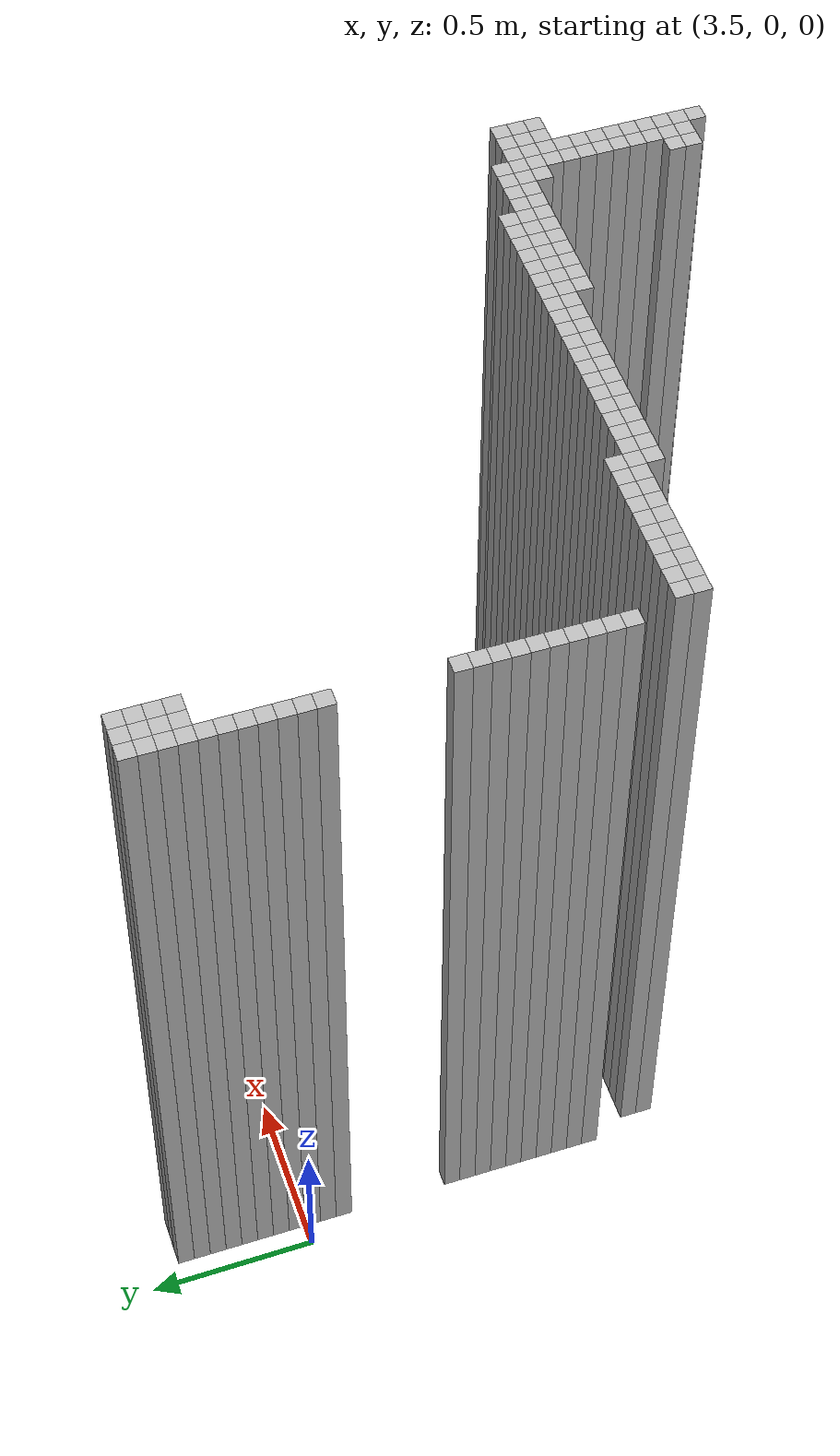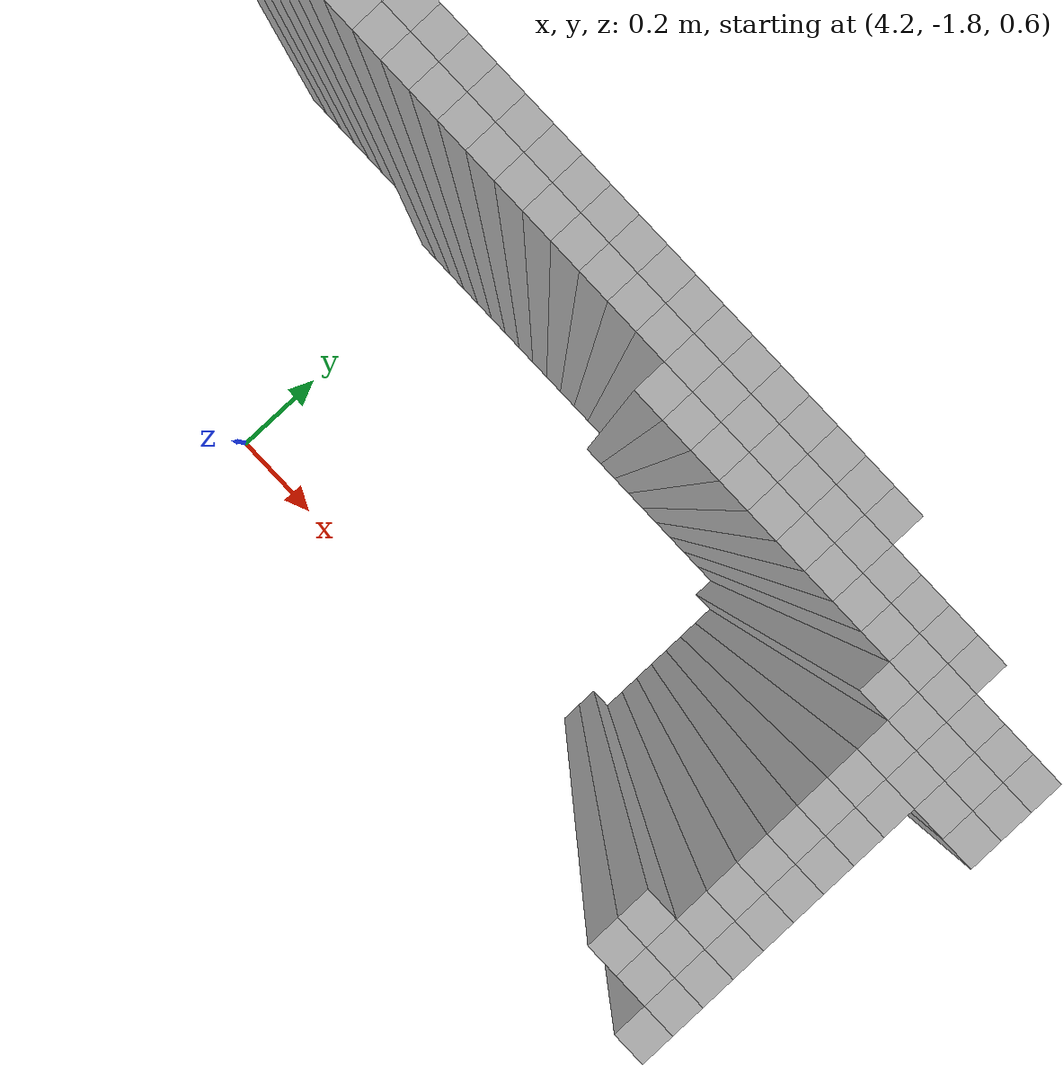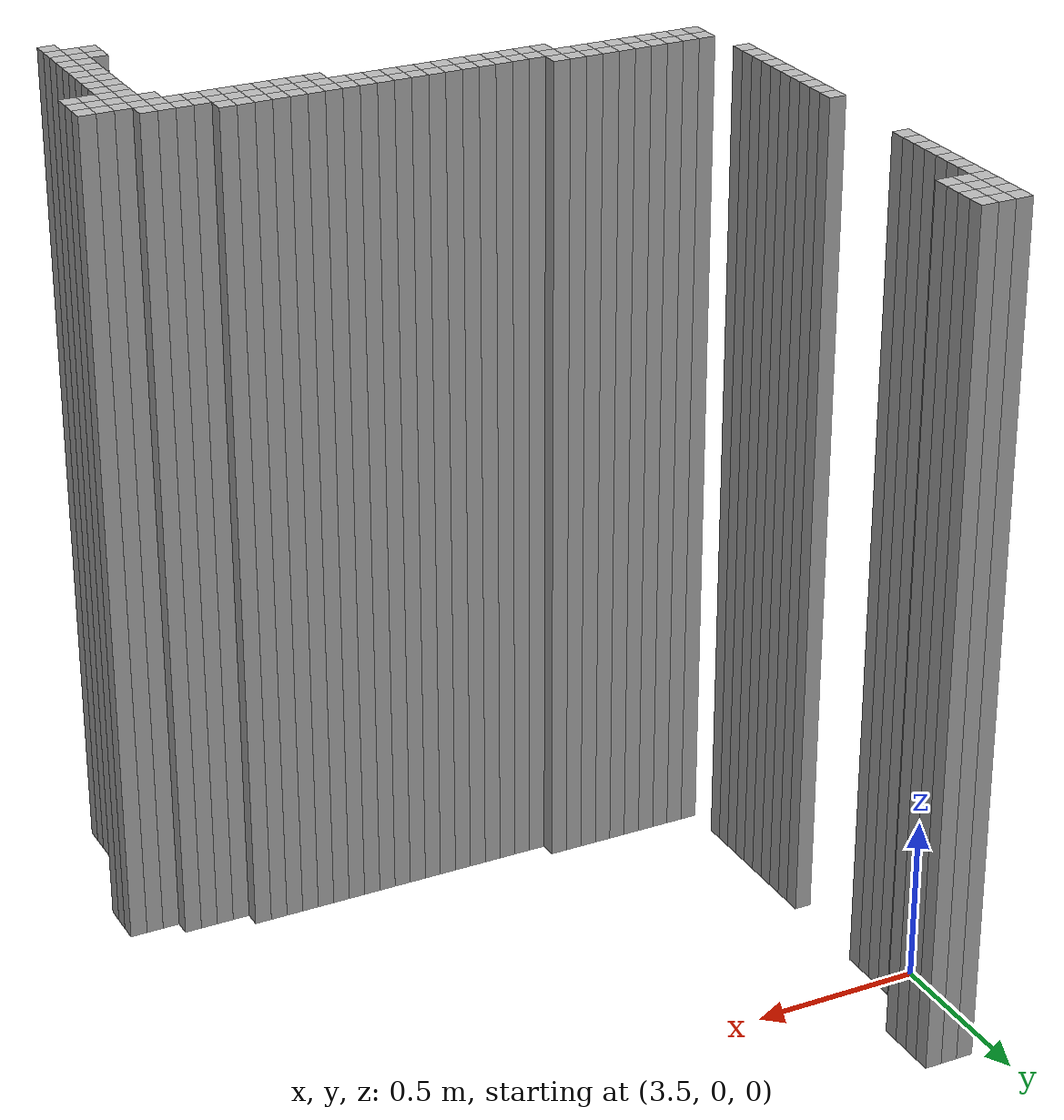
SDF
<sdf version="1.9">
 <world name="map_world">
  <model name="wall_295_146">
   <static>true</static>
   <pose>3.589 0.380 1.250 0 0 0</pose>
   <link name="link">
    <collision name="collision"><geometry><box><size>0.050 0.050 2.500</size></box></geometry></collision>
    <visual name="visual"><geometry><box><size>0.050 0.050 2.500</size></box></geometry></visual>
   </link>
  </model>
  <model name="wall_296_146">
   <static>true</static>
   <pose>3.639 0.380 1.250 0 0 0</pose>
   <link name="link">
    <collision name="collision"><geometry><box><size>0.050 0.050 2.500</size></box></geometry></collision>
    <visual name="visual"><geometry><box><size>0.050 0.050 2.500</size></box></geometry></visual>
   </link>
  </model>
  <model name="wall_297_146">
   <static>true</static>
   <pose>3.689 0.380 1.250 0 0 0</pose>
   <link name="link">
    <collision name="collision"><geometry><box><size>0.050 0.050 2.500</size></box></geometry></collision>
    <visual name="visual"><geometry><box><size>0.050 0.050 2.500</size></box></geometry></visual>
   </link>
  </model>
  <model name="wall_295_147">
   <static>true</static>
   <pose>3.589 0.330 1.250 0 0 0</pose>
   <link name="link">
    <collision name="collision"><geometry><box><size>0.050 0.050 2.500</size></box></geometry></collision>
    <visual name="visual"><geometry><box><size>0.050 0.050 2.500</size></box></geometry></visual>
   </link>
  </model>
  <model name="wall_296_147">
   <static>true</static>
   <pose>3.639 0.330 1.250 0 0 0</pose>
   <link name="link">
    <collision name="collision"><geometry><box><size>0.050 0.050 2.500</size></box></geometry></collision>
    <visual name="visual"><geometry><box><size>0.050 0.050 2.500</size></box></geometry></visual>
   </link>
  </model>
  <model name="wall_297_147">
   <static>true</static>
   <pose>3.689 0.330 1.250 0 0 0</pose>
   <link name="link">
    <collision name="collision"><geometry><box><size>0.050 0.050 2.500</size></box></geometry></collision>
    <visual name="visual"><geometry><box><size>0.050 0.050 2.500</size></box></geometry></visual>
   </link>
  </model>
  <model name="wall_295_148">
   <static>true</static>
   <pose>3.589 0.280 1.250 0 0 0</pose>
   <link name="link">
    <collision name="collision"><geometry><box><size>0.050 0.050 2.500</size></box></geometry></collision>
    <visual name="visual"><geometry><box><size>0.050 0.050 2.500</size></box></geometry></visual>
   </link>
  </model>
  <model name="wall_296_148">
   <static>true</static>
   <pose>3.639 0.280 1.250 0 0 0</pose>
   <link name="link">
    <collision name="collision"><geometry><box><size>0.050 0.050 2.500</size></box></geometry></collision>
    <visual name="visual"><geometry><box><size>0.050 0.050 2.500</size></box></geometry></visual>
   </link>
  </model>
  <model name="wall_297_148">
   <static>true</static>
   <pose>3.689 0.280 1.250 0 0 0</pose>
   <link name="link">
    <collision name="collision"><geometry><box><size>0.050 0.050 2.500</size></box></geometry></collision>
    <visual name="visual"><geometry><box><size>0.050 0.050 2.500</size></box></geometry></visual>
   </link>
  </model>
  <model name="wall_295_149">
   <static>true</static>
   <pose>3.589 0.230 1.250 0 0 0</pose>
   <link name="link">
    <collision name="collision"><geometry><box><size>0.050 0.050 2.500</size></box></geometry></collision>
    <visual name="visual"><geometry><box><size>0.050 0.050 2.500</size></box></geometry></visual>
   </link>
  </model>
  <model name="wall_296_149">
   <static>true</static>
   <pose>3.639 0.230 1.250 0 0 0</pose>
   <link name="link">
    <collision name="collision"><geometry><box><size>0.050 0.050 2.500</size></box></geometry></collision>
    <visual name="visual"><geometry><box><size>0.050 0.050 2.500</size></box></geometry></visual>
   </link>
  </model>
  <model name="wall_297_149">
   <static>true</static>
   <pose>3.689 0.230 1.250 0 0 0</pose>
   <link name="link">
    <collision name="collision"><geometry><box><size>0.050 0.050 2.500</size></box></geometry></collision>
    <visual name="visual"><geometry><box><size>0.050 0.050 2.500</size></box></geometry></visual>
   </link>
  </model>
  <model name="wall_295_150">
   <static>true</static>
   <pose>3.589 0.180 1.250 0 0 0</pose>
   <link name="link">
    <collision name="collision"><geometry><box><size>0.050 0.050 2.500</size></box></geometry></collision>
    <visual name="visual"><geometry><box><size>0.050 0.050 2.500</size></box></geometry></visual>
   </link>
  </model>
  <model name="wall_295_151">
   <static>true</static>
   <pose>3.589 0.130 1.250 0 0 0</pose>
   <link name="link">
    <collision name="collision"><geometry><box><size>0.050 0.050 2.500</size></box></geometry></collision>
    <visual name="visual"><geometry><box><size>0.050 0.050 2.500</size></box></geometry></visual>
   </link>
  </model>
  <model name="wall_295_152">
   <static>true</static>
   <pose>3.589 0.080 1.250 0 0 0</pose>
   <link name="link">
    <collision name="collision"><geometry><box><size>0.050 0.050 2.500</size></box></geometry></collision>
    <visual name="visual"><geometry><box><size>0.050 0.050 2.500</size></box></geometry></visual>
   </link>
  </model>
  <model name="wall_295_153">
   <static>true</static>
   <pose>3.589 0.030 1.250 0 0 0</pose>
   <link name="link">
    <collision name="collision"><geometry><box><size>0.050 0.050 2.500</size></box></geometry></collision>
    <visual name="visual"><geometry><box><size>0.050 0.050 2.500</size></box></geometry></visual>
   </link>
  </model>
  <model name="wall_295_154">
   <static>true</static>
   <pose>3.589 -0.020 1.250 0 0 0</pose>
   <link name="link">
    <collision name="collision"><geometry><box><size>0.050 0.050 2.500</size></box></geometry></collision>
    <visual name="visual"><geometry><box><size>0.050 0.050 2.500</size></box></geometry></visual>
   </link>
  </model>
  <model name="wall_295_155">
   <static>true</static>
   <pose>3.589 -0.070 1.250 0 0 0</pose>
   <link name="link">
    <collision name="collision"><geometry><box><size>0.050 0.050 2.500</size></box></geometry></collision>
    <visual name="visual"><geometry><box><size>0.050 0.050 2.500</size></box></geometry></visual>
   </link>
  </model>
  <model name="wall_295_156">
   <static>true</static>
   <pose>3.589 -0.120 1.250 0 0 0</pose>
   <link name="link">
    <collision name="collision"><geometry><box><size>0.050 0.050 2.500</size></box></geometry></collision>
    <visual name="visual"><geometry><box><size>0.050 0.050 2.500</size></box></geometry></visual>
   </link>
  </model>
  <model name="wall_295_163">
   <static>true</static>
   <pose>3.589 -0.470 1.250 0 0 0</pose>
   <link name="link">
    <collision name="collision"><geometry><box><size>0.050 0.050 2.500</size></box></geometry></collision>
    <visual name="visual"><geometry><box><size>0.050 0.050 2.500</size></box></geometry></visual>
   </link>
  </model>
  <model name="wall_295_164">
   <static>true</static>
   <pose>3.589 -0.520 1.250 0 0 0</pose>
   <link name="link">
    <collision name="collision"><geometry><box><size>0.050 0.050 2.500</size></box></geometry></collision>
    <visual name="visual"><geometry><box><size>0.050 0.050 2.500</size></box></geometry></visual>
   </link>
  </model>
  <model name="wall_295_165">
   <static>true</static>
   <pose>3.589 -0.570 1.250 0 0 0</pose>
   <link name="link">
    <collision name="collision"><geometry><box><size>0.050 0.050 2.500</size></box></geometry></collision>
    <visual name="visual"><geometry><box><size>0.050 0.050 2.500</size></box></geometry></visual>
   </link>
  </model>
  <model name="wall_295_166">
   <static>true</static>
   <pose>3.589 -0.620 1.250 0 0 0</pose>
   <link name="link">
    <collision name="collision"><geometry><box><size>0.050 0.050 2.500</size></box></geometry></collision>
    <visual name="visual"><geometry><box><size>0.050 0.050 2.500</size></box></geometry></visual>
   </link>
  </model>
  <model name="wall_295_167">
   <static>true</static>
   <pose>3.589 -0.670 1.250 0 0 0</pose>
   <link name="link">
    <collision name="collision"><geometry><box><size>0.050 0.050 2.500</size></box></geometry></collision>
    <visual name="visual"><geometry><box><size>0.050 0.050 2.500</size></box></geometry></visual>
   </link>
  </model>
  <model name="wall_295_168">
   <static>true</static>
   <pose>3.589 -0.720 1.250 0 0 0</pose>
   <link name="link">
    <collision name="collision"><geometry><box><size>0.050 0.050 2.500</size></box></geometry></collision>
    <visual name="visual"><geometry><box><size>0.050 0.050 2.500</size></box></geometry></visual>
   </link>
  </model>
  <model name="wall_295_169">
   <static>true</static>
   <pose>3.589 -0.770 1.250 0 0 0</pose>
   <link name="link">
    <collision name="collision"><geometry><box><size>0.050 0.050 2.500</size></box></geometry></collision>
    <visual name="visual"><geometry><box><size>0.050 0.050 2.500</size></box></geometry></visual>
   </link>
  </model>
  <model name="wall_295_170">
   <static>true</static>
   <pose>3.589 -0.820 1.250 0 0 0</pose>
   <link name="link">
    <collision name="collision"><geometry><box><size>0.050 0.050 2.500</size></box></geometry></collision>
    <visual name="visual"><geometry><box><size>0.050 0.050 2.500</size></box></geometry></visual>
   </link>
  </model>
  <model name="wall_295_171">
   <static>true</static>
   <pose>3.589 -0.870 1.250 0 0 0</pose>
   <link name="link">
    <collision name="collision"><geometry><box><size>0.050 0.050 2.500</size></box></geometry></collision>
    <visual name="visual"><geometry><box><size>0.050 0.050 2.500</size></box></geometry></visual>
   </link>
  </model>
  <model name="wall_295_172">
   <static>true</static>
   <pose>3.589 -0.920 1.250 0 0 0</pose>
   <link name="link">
    <collision name="collision"><geometry><box><size>0.050 0.050 2.500</size></box></geometry></collision>
    <visual name="visual"><geometry><box><size>0.050 0.050 2.500</size></box></geometry></visual>
   </link>
  </model>
  <model name="wall_296_175">
   <static>true</static>
   <pose>3.639 -1.070 1.250 0 0 0</pose>
   <link name="link">
    <collision name="collision"><geometry><box><size>0.050 0.050 2.500</size></box></geometry></collision>
    <visual name="visual"><geometry><box><size>0.050 0.050 2.500</size></box></geometry></visual>
   </link>
  </model>
  <model name="wall_297_175">
   <static>true</static>
   <pose>3.689 -1.070 1.250 0 0 0</pose>
   <link name="link">
    <collision name="collision"><geometry><box><size>0.050 0.050 2.500</size></box></geometry></collision>
    <visual name="visual"><geometry><box><size>0.050 0.050 2.500</size></box></geometry></visual>
   </link>
  </model>
  <model name="wall_298_175">
   <static>true</static>
   <pose>3.739 -1.070 1.250 0 0 0</pose>
   <link name="link">
    <collision name="collision"><geometry><box><size>0.050 0.050 2.500</size></box></geometry></collision>
    <visual name="visual"><geometry><box><size>0.050 0.050 2.500</size></box></geometry></visual>
   </link>
  </model>
  <model name="wall_299_175">
   <static>true</static>
   <pose>3.789 -1.070 1.250 0 0 0</pose>
   <link name="link">
    <collision name="collision"><geometry><box><size>0.050 0.050 2.500</size></box></geometry></collision>
    <visual name="visual"><geometry><box><size>0.050 0.050 2.500</size></box></geometry></visual>
   </link>
  </model>
  <model name="wall_300_175">
   <static>true</static>
   <pose>3.839 -1.070 1.250 0 0 0</pose>
   <link name="link">
    <collision name="collision"><geometry><box><size>0.050 0.050 2.500</size></box></geometry></collision>
    <visual name="visual"><geometry><box><size>0.050 0.050 2.500</size></box></geometry></visual>
   </link>
  </model>
  <model name="wall_301_175">
   <static>true</static>
   <pose>3.889 -1.070 1.250 0 0 0</pose>
   <link name="link">
    <collision name="collision"><geometry><box><size>0.050 0.050 2.500</size></box></geometry></collision>
    <visual name="visual"><geometry><box><size>0.050 0.050 2.500</size></box></geometry></visual>
   </link>
  </model>
  <model name="wall_302_175">
   <static>true</static>
   <pose>3.939 -1.070 1.250 0 0 0</pose>
   <link name="link">
    <collision name="collision"><geometry><box><size>0.050 0.050 2.500</size></box></geometry></collision>
    <visual name="visual"><geometry><box><size>0.050 0.050 2.500</size></box></geometry></visual>
   </link>
  </model>
  <model name="wall_303_175">
   <static>true</static>
   <pose>3.989 -1.070 1.250 0 0 0</pose>
   <link name="link">
    <collision name="collision"><geometry><box><size>0.050 0.050 2.500</size></box></geometry></collision>
    <visual name="visual"><geometry><box><size>0.050 0.050 2.500</size></box></geometry></visual>
   </link>
  </model>
  <model name="wall_304_175">
   <static>true</static>
   <pose>4.039 -1.070 1.250 0 0 0</pose>
   <link name="link">
    <collision name="collision"><geometry><box><size>0.050 0.050 2.500</size></box></geometry></collision>
    <visual name="visual"><geometry><box><size>0.050 0.050 2.500</size></box></geometry></visual>
   </link>
  </model>
  <model name="wall_305_175">
   <static>true</static>
   <pose>4.089 -1.070 1.250 0 0 0</pose>
   <link name="link">
    <collision name="collision"><geometry><box><size>0.050 0.050 2.500</size></box></geometry></collision>
    <visual name="visual"><geometry><box><size>0.050 0.050 2.500</size></box></geometry></visual>
   </link>
  </model>
  <model name="wall_296_176">
   <static>true</static>
   <pose>3.639 -1.120 1.250 0 0 0</pose>
   <link name="link">
    <collision name="collision"><geometry><box><size>0.050 0.050 2.500</size></box></geometry></collision>
    <visual name="visual"><geometry><box><size>0.050 0.050 2.500</size></box></geometry></visual>
   </link>
  </model>
  <model name="wall_297_176">
   <static>true</static>
   <pose>3.689 -1.120 1.250 0 0 0</pose>
   <link name="link">
    <collision name="collision"><geometry><box><size>0.050 0.050 2.500</size></box></geometry></collision>
    <visual name="visual"><geometry><box><size>0.050 0.050 2.500</size></box></geometry></visual>
   </link>
  </model>
  <model name="wall_298_176">
   <static>true</static>
   <pose>3.739 -1.120 1.250 0 0 0</pose>
   <link name="link">
    <collision name="collision"><geometry><box><size>0.050 0.050 2.500</size></box></geometry></collision>
    <visual name="visual"><geometry><box><size>0.050 0.050 2.500</size></box></geometry></visual>
   </link>
  </model>
  <model name="wall_299_176">
   <static>true</static>
   <pose>3.789 -1.120 1.250 0 0 0</pose>
   <link name="link">
    <collision name="collision"><geometry><box><size>0.050 0.050 2.500</size></box></geometry></collision>
    <visual name="visual"><geometry><box><size>0.050 0.050 2.500</size></box></geometry></visual>
   </link>
  </model>
  <model name="wall_300_176">
   <static>true</static>
   <pose>3.839 -1.120 1.250 0 0 0</pose>
   <link name="link">
    <collision name="collision"><geometry><box><size>0.050 0.050 2.500</size></box></geometry></collision>
    <visual name="visual"><geometry><box><size>0.050 0.050 2.500</size></box></geometry></visual>
   </link>
  </model>
  <model name="wall_301_176">
   <static>true</static>
   <pose>3.889 -1.120 1.250 0 0 0</pose>
   <link name="link">
    <collision name="collision"><geometry><box><size>0.050 0.050 2.500</size></box></geometry></collision>
    <visual name="visual"><geometry><box><size>0.050 0.050 2.500</size></box></geometry></visual>
   </link>
  </model>
  <model name="wall_302_176">
   <static>true</static>
   <pose>3.939 -1.120 1.250 0 0 0</pose>
   <link name="link">
    <collision name="collision"><geometry><box><size>0.050 0.050 2.500</size></box></geometry></collision>
    <visual name="visual"><geometry><box><size>0.050 0.050 2.500</size></box></geometry></visual>
   </link>
  </model>
  <model name="wall_303_176">
   <static>true</static>
   <pose>3.989 -1.120 1.250 0 0 0</pose>
   <link name="link">
    <collision name="collision"><geometry><box><size>0.050 0.050 2.500</size></box></geometry></collision>
    <visual name="visual"><geometry><box><size>0.050 0.050 2.500</size></box></geometry></visual>
   </link>
  </model>
  <model name="wall_304_176">
   <static>true</static>
   <pose>4.039 -1.120 1.250 0 0 0</pose>
   <link name="link">
    <collision name="collision"><geometry><box><size>0.050 0.050 2.500</size></box></geometry></collision>
    <visual name="visual"><geometry><box><size>0.050 0.050 2.500</size></box></geometry></visual>
   </link>
  </model>
  <model name="wall_305_176">
   <static>true</static>
   <pose>4.089 -1.120 1.250 0 0 0</pose>
   <link name="link">
    <collision name="collision"><geometry><box><size>0.050 0.050 2.500</size></box></geometry></collision>
    <visual name="visual"><geometry><box><size>0.050 0.050 2.500</size></box></geometry></visual>
   </link>
  </model>
  <model name="wall_306_176">
   <static>true</static>
   <pose>4.139 -1.120 1.250 0 0 0</pose>
   <link name="link">
    <collision name="collision"><geometry><box><size>0.050 0.050 2.500</size></box></geometry></collision>
    <visual name="visual"><geometry><box><size>0.050 0.050 2.500</size></box></geometry></visual>
   </link>
  </model>
  <model name="wall_307_176">
   <static>true</static>
   <pose>4.189 -1.120 1.250 0 0 0</pose>
   <link name="link">
    <collision name="collision"><geometry><box><size>0.050 0.050 2.500</size></box></geometry></collision>
    <visual name="visual"><geometry><box><size>0.050 0.050 2.500</size></box></geometry></visual>
   </link>
  </model>
  <model name="wall_308_176">
   <static>true</static>
   <pose>4.239 -1.120 1.250 0 0 0</pose>
   <link name="link">
    <collision name="collision"><geometry><box><size>0.050 0.050 2.500</size></box></geometry></collision>
    <visual name="visual"><geometry><box><size>0.050 0.050 2.500</size></box></geometry></visual>
   </link>
  </model>
  <model name="wall_309_176">
   <static>true</static>
   <pose>4.289 -1.120 1.250 0 0 0</pose>
   <link name="link">
    <collision name="collision"><geometry><box><size>0.050 0.050 2.500</size></box></geometry></collision>
    <visual name="visual"><geometry><box><size>0.050 0.050 2.500</size></box></geometry></visual>
   </link>
  </model>
  <model name="wall_310_176">
   <static>true</static>
   <pose>4.339 -1.120 1.250 0 0 0</pose>
   <link name="link">
    <collision name="collision"><geometry><box><size>0.050 0.050 2.500</size></box></geometry></collision>
    <visual name="visual"><geometry><box><size>0.050 0.050 2.500</size></box></geometry></visual>
   </link>
  </model>
  <model name="wall_311_176">
   <static>true</static>
   <pose>4.389 -1.120 1.250 0 0 0</pose>
   <link name="link">
    <collision name="collision"><geometry><box><size>0.050 0.050 2.500</size></box></geometry></collision>
    <visual name="visual"><geometry><box><size>0.050 0.050 2.500</size></box></geometry></visual>
   </link>
  </model>
  <model name="wall_312_176">
   <static>true</static>
   <pose>4.439 -1.120 1.250 0 0 0</pose>
   <link name="link">
    <collision name="collision"><geometry><box><size>0.050 0.050 2.500</size></box></geometry></collision>
    <visual name="visual"><geometry><box><size>0.050 0.050 2.500</size></box></geometry></visual>
   </link>
  </model>
  <model name="wall_313_176">
   <static>true</static>
   <pose>4.489 -1.120 1.250 0 0 0</pose>
   <link name="link">
    <collision name="collision"><geometry><box><size>0.050 0.050 2.500</size></box></geometry></collision>
    <visual name="visual"><geometry><box><size>0.050 0.050 2.500</size></box></geometry></visual>
   </link>
  </model>
  <model name="wall_314_176">
   <static>true</static>
   <pose>4.539 -1.120 1.250 0 0 0</pose>
   <link name="link">
    <collision name="collision"><geometry><box><size>0.050 0.050 2.500</size></box></geometry></collision>
    <visual name="visual"><geometry><box><size>0.050 0.050 2.500</size></box></geometry></visual>
   </link>
  </model>
  <model name="wall_315_176">
   <static>true</static>
   <pose>4.589 -1.120 1.250 0 0 0</pose>
   <link name="link">
    <collision name="collision"><geometry><box><size>0.050 0.050 2.500</size></box></geometry></collision>
    <visual name="visual"><geometry><box><size>0.050 0.050 2.500</size></box></geometry></visual>
   </link>
  </model>
  <model name="wall_316_176">
   <static>true</static>
   <pose>4.639 -1.120 1.250 0 0 0</pose>
   <link name="link">
    <collision name="collision"><geometry><box><size>0.050 0.050 2.500</size></box></geometry></collision>
    <visual name="visual"><geometry><box><size>0.050 0.050 2.500</size></box></geometry></visual>
   </link>
  </model>
  <model name="wall_317_176">
   <static>true</static>
   <pose>4.689 -1.120 1.250 0 0 0</pose>
   <link name="link">
    <collision name="collision"><geometry><box><size>0.050 0.050 2.500</size></box></geometry></collision>
    <visual name="visual"><geometry><box><size>0.050 0.050 2.500</size></box></geometry></visual>
   </link>
  </model>
  <model name="wall_318_176">
   <static>true</static>
   <pose>4.739 -1.120 1.250 0 0 0</pose>
   <link name="link">
    <collision name="collision"><geometry><box><size>0.050 0.050 2.500</size></box></geometry></collision>
    <visual name="visual"><geometry><box><size>0.050 0.050 2.500</size></box></geometry></visual>
   </link>
  </model>
  <model name="wall_319_176">
   <static>true</static>
   <pose>4.789 -1.120 1.250 0 0 0</pose>
   <link name="link">
    <collision name="collision"><geometry><box><size>0.050 0.050 2.500</size></box></geometry></collision>
    <visual name="visual"><geometry><box><size>0.050 0.050 2.500</size></box></geometry></visual>
   </link>
  </model>
  <model name="wall_320_176">
   <static>true</static>
   <pose>4.839 -1.120 1.250 0 0 0</pose>
   <link name="link">
    <collision name="collision"><geometry><box><size>0.050 0.050 2.500</size></box></geometry></collision>
    <visual name="visual"><geometry><box><size>0.050 0.050 2.500</size></box></geometry></visual>
   </link>
  </model>
  <model name="wall_321_176">
   <static>true</static>
   <pose>4.889 -1.120 1.250 0 0 0</pose>
   <link name="link">
    <collision name="collision"><geometry><box><size>0.050 0.050 2.500</size></box></geometry></collision>
    <visual name="visual"><geometry><box><size>0.050 0.050 2.500</size></box></geometry></visual>
   </link>
  </model>
  <model name="wall_322_176">
   <static>true</static>
   <pose>4.939 -1.120 1.250 0 0 0</pose>
   <link name="link">
    <collision name="collision"><geometry><box><size>0.050 0.050 2.500</size></box></geometry></collision>
    <visual name="visual"><geometry><box><size>0.050 0.050 2.500</size></box></geometry></visual>
   </link>
  </model>
  <model name="wall_323_176">
   <static>true</static>
   <pose>4.989 -1.120 1.250 0 0 0</pose>
   <link name="link">
    <collision name="collision"><geometry><box><size>0.050 0.050 2.500</size></box></geometry></collision>
    <visual name="visual"><geometry><box><size>0.050 0.050 2.500</size></box></geometry></visual>
   </link>
  </model>
  <model name="wall_324_176">
   <static>true</static>
   <pose>5.039 -1.120 1.250 0 0 0</pose>
   <link name="link">
    <collision name="collision"><geometry><box><size>0.050 0.050 2.500</size></box></geometry></collision>
    <visual name="visual"><geometry><box><size>0.050 0.050 2.500</size></box></geometry></visual>
   </link>
  </model>
  <model name="wall_305_177">
   <static>true</static>
   <pose>4.089 -1.170 1.250 0 0 0</pose>
   <link name="link">
    <collision name="collision"><geometry><box><size>0.050 0.050 2.500</size></box></geometry></collision>
    <visual name="visual"><geometry><box><size>0.050 0.050 2.500</size></box></geometry></visual>
   </link>
  </model>
  <model name="wall_306_177">
   <static>true</static>
   <pose>4.139 -1.170 1.250 0 0 0</pose>
   <link name="link">
    <collision name="collision"><geometry><box><size>0.050 0.050 2.500</size></box></geometry></collision>
    <visual name="visual"><geometry><box><size>0.050 0.050 2.500</size></box></geometry></visual>
   </link>
  </model>
  <model name="wall_307_177">
   <static>true</static>
   <pose>4.189 -1.170 1.250 0 0 0</pose>
   <link name="link">
    <collision name="collision"><geometry><box><size>0.050 0.050 2.500</size></box></geometry></collision>
    <visual name="visual"><geometry><box><size>0.050 0.050 2.500</size></box></geometry></visual>
   </link>
  </model>
  <model name="wall_308_177">
   <static>true</static>
   <pose>4.239 -1.170 1.250 0 0 0</pose>
   <link name="link">
    <collision name="collision"><geometry><box><size>0.050 0.050 2.500</size></box></geometry></collision>
    <visual name="visual"><geometry><box><size>0.050 0.050 2.500</size></box></geometry></visual>
   </link>
  </model>
  <model name="wall_309_177">
   <static>true</static>
   <pose>4.289 -1.170 1.250 0 0 0</pose>
   <link name="link">
    <collision name="collision"><geometry><box><size>0.050 0.050 2.500</size></box></geometry></collision>
    <visual name="visual"><geometry><box><size>0.050 0.050 2.500</size></box></geometry></visual>
   </link>
  </model>
  <model name="wall_310_177">
   <static>true</static>
   <pose>4.339 -1.170 1.250 0 0 0</pose>
   <link name="link">
    <collision name="collision"><geometry><box><size>0.050 0.050 2.500</size></box></geometry></collision>
    <visual name="visual"><geometry><box><size>0.050 0.050 2.500</size></box></geometry></visual>
   </link>
  </model>
  <model name="wall_311_177">
   <static>true</static>
   <pose>4.389 -1.170 1.250 0 0 0</pose>
   <link name="link">
    <collision name="collision"><geometry><box><size>0.050 0.050 2.500</size></box></geometry></collision>
    <visual name="visual"><geometry><box><size>0.050 0.050 2.500</size></box></geometry></visual>
   </link>
  </model>
  <model name="wall_312_177">
   <static>true</static>
   <pose>4.439 -1.170 1.250 0 0 0</pose>
   <link name="link">
    <collision name="collision"><geometry><box><size>0.050 0.050 2.500</size></box></geometry></collision>
    <visual name="visual"><geometry><box><size>0.050 0.050 2.500</size></box></geometry></visual>
   </link>
  </model>
  <model name="wall_313_177">
   <static>true</static>
   <pose>4.489 -1.170 1.250 0 0 0</pose>
   <link name="link">
    <collision name="collision"><geometry><box><size>0.050 0.050 2.500</size></box></geometry></collision>
    <visual name="visual"><geometry><box><size>0.050 0.050 2.500</size></box></geometry></visual>
   </link>
  </model>
  <model name="wall_314_177">
   <static>true</static>
   <pose>4.539 -1.170 1.250 0 0 0</pose>
   <link name="link">
    <collision name="collision"><geometry><box><size>0.050 0.050 2.500</size></box></geometry></collision>
    <visual name="visual"><geometry><box><size>0.050 0.050 2.500</size></box></geometry></visual>
   </link>
  </model>
  <model name="wall_315_177">
   <static>true</static>
   <pose>4.589 -1.170 1.250 0 0 0</pose>
   <link name="link">
    <collision name="collision"><geometry><box><size>0.050 0.050 2.500</size></box></geometry></collision>
    <visual name="visual"><geometry><box><size>0.050 0.050 2.500</size></box></geometry></visual>
   </link>
  </model>
  <model name="wall_316_177">
   <static>true</static>
   <pose>4.639 -1.170 1.250 0 0 0</pose>
   <link name="link">
    <collision name="collision"><geometry><box><size>0.050 0.050 2.500</size></box></geometry></collision>
    <visual name="visual"><geometry><box><size>0.050 0.050 2.500</size></box></geometry></visual>
   </link>
  </model>
  <model name="wall_317_177">
   <static>true</static>
   <pose>4.689 -1.170 1.250 0 0 0</pose>
   <link name="link">
    <collision name="collision"><geometry><box><size>0.050 0.050 2.500</size></box></geometry></collision>
    <visual name="visual"><geometry><box><size>0.050 0.050 2.500</size></box></geometry></visual>
   </link>
  </model>
  <model name="wall_318_177">
   <static>true</static>
   <pose>4.739 -1.170 1.250 0 0 0</pose>
   <link name="link">
    <collision name="collision"><geometry><box><size>0.050 0.050 2.500</size></box></geometry></collision>
    <visual name="visual"><geometry><box><size>0.050 0.050 2.500</size></box></geometry></visual>
   </link>
  </model>
  <model name="wall_319_177">
   <static>true</static>
   <pose>4.789 -1.170 1.250 0 0 0</pose>
   <link name="link">
    <collision name="collision"><geometry><box><size>0.050 0.050 2.500</size></box></geometry></collision>
    <visual name="visual"><geometry><box><size>0.050 0.050 2.500</size></box></geometry></visual>
   </link>
  </model>
  <model name="wall_320_177">
   <static>true</static>
   <pose>4.839 -1.170 1.250 0 0 0</pose>
   <link name="link">
    <collision name="collision"><geometry><box><size>0.050 0.050 2.500</size></box></geometry></collision>
    <visual name="visual"><geometry><box><size>0.050 0.050 2.500</size></box></geometry></visual>
   </link>
  </model>
  <model name="wall_321_177">
   <static>true</static>
   <pose>4.889 -1.170 1.250 0 0 0</pose>
   <link name="link">
    <collision name="collision"><geometry><box><size>0.050 0.050 2.500</size></box></geometry></collision>
    <visual name="visual"><geometry><box><size>0.050 0.050 2.500</size></box></geometry></visual>
   </link>
  </model>
  <model name="wall_322_177">
   <static>true</static>
   <pose>4.939 -1.170 1.250 0 0 0</pose>
   <link name="link">
    <collision name="collision"><geometry><box><size>0.050 0.050 2.500</size></box></geometry></collision>
    <visual name="visual"><geometry><box><size>0.050 0.050 2.500</size></box></geometry></visual>
   </link>
  </model>
  <model name="wall_323_177">
   <static>true</static>
   <pose>4.989 -1.170 1.250 0 0 0</pose>
   <link name="link">
    <collision name="collision"><geometry><box><size>0.050 0.050 2.500</size></box></geometry></collision>
    <visual name="visual"><geometry><box><size>0.050 0.050 2.500</size></box></geometry></visual>
   </link>
  </model>
  <model name="wall_324_177">
   <static>true</static>
   <pose>5.039 -1.170 1.250 0 0 0</pose>
   <link name="link">
    <collision name="collision"><geometry><box><size>0.050 0.050 2.500</size></box></geometry></collision>
    <visual name="visual"><geometry><box><size>0.050 0.050 2.500</size></box></geometry></visual>
   </link>
  </model>
  <model name="wall_325_177">
   <static>true</static>
   <pose>5.089 -1.170 1.250 0 0 0</pose>
   <link name="link">
    <collision name="collision"><geometry><box><size>0.050 0.050 2.500</size></box></geometry></collision>
    <visual name="visual"><geometry><box><size>0.050 0.050 2.500</size></box></geometry></visual>
   </link>
  </model>
  <model name="wall_326_177">
   <static>true</static>
   <pose>5.139 -1.170 1.250 0 0 0</pose>
   <link name="link">
    <collision name="collision"><geometry><box><size>0.050 0.050 2.500</size></box></geometry></collision>
    <visual name="visual"><geometry><box><size>0.050 0.050 2.500</size></box></geometry></visual>
   </link>
  </model>
  <model name="wall_327_177">
   <static>true</static>
   <pose>5.189 -1.170 1.250 0 0 0</pose>
   <link name="link">
    <collision name="collision"><geometry><box><size>0.050 0.050 2.500</size></box></geometry></collision>
    <visual name="visual"><geometry><box><size>0.050 0.050 2.500</size></box></geometry></visual>
   </link>
  </model>
  <model name="wall_328_177">
   <static>true</static>
   <pose>5.239 -1.170 1.250 0 0 0</pose>
   <link name="link">
    <collision name="collision"><geometry><box><size>0.050 0.050 2.500</size></box></geometry></collision>
    <visual name="visual"><geometry><box><size>0.050 0.050 2.500</size></box></geometry></visual>
   </link>
  </model>
  <model name="wall_318_178">
   <static>true</static>
   <pose>4.739 -1.220 1.250 0 0 0</pose>
   <link name="link">
    <collision name="collision"><geometry><box><size>0.050 0.050 2.500</size></box></geometry></collision>
    <visual name="visual"><geometry><box><size>0.050 0.050 2.500</size></box></geometry></visual>
   </link>
  </model>
  <model name="wall_319_178">
   <static>true</static>
   <pose>4.789 -1.220 1.250 0 0 0</pose>
   <link name="link">
    <collision name="collision"><geometry><box><size>0.050 0.050 2.500</size></box></geometry></collision>
    <visual name="visual"><geometry><box><size>0.050 0.050 2.500</size></box></geometry></visual>
   </link>
  </model>
  <model name="wall_320_178">
   <static>true</static>
   <pose>4.839 -1.220 1.250 0 0 0</pose>
   <link name="link">
    <collision name="collision"><geometry><box><size>0.050 0.050 2.500</size></box></geometry></collision>
    <visual name="visual"><geometry><box><size>0.050 0.050 2.500</size></box></geometry></visual>
   </link>
  </model>
  <model name="wall_321_178">
   <static>true</static>
   <pose>4.889 -1.220 1.250 0 0 0</pose>
   <link name="link">
    <collision name="collision"><geometry><box><size>0.050 0.050 2.500</size></box></geometry></collision>
    <visual name="visual"><geometry><box><size>0.050 0.050 2.500</size></box></geometry></visual>
   </link>
  </model>
  <model name="wall_322_178">
   <static>true</static>
   <pose>4.939 -1.220 1.250 0 0 0</pose>
   <link name="link">
    <collision name="collision"><geometry><box><size>0.050 0.050 2.500</size></box></geometry></collision>
    <visual name="visual"><geometry><box><size>0.050 0.050 2.500</size></box></geometry></visual>
   </link>
  </model>
  <model name="wall_323_178">
   <static>true</static>
   <pose>4.989 -1.220 1.250 0 0 0</pose>
   <link name="link">
    <collision name="collision"><geometry><box><size>0.050 0.050 2.500</size></box></geometry></collision>
    <visual name="visual"><geometry><box><size>0.050 0.050 2.500</size></box></geometry></visual>
   </link>
  </model>
  <model name="wall_324_178">
   <static>true</static>
   <pose>5.039 -1.220 1.250 0 0 0</pose>
   <link name="link">
    <collision name="collision"><geometry><box><size>0.050 0.050 2.500</size></box></geometry></collision>
    <visual name="visual"><geometry><box><size>0.050 0.050 2.500</size></box></geometry></visual>
   </link>
  </model>
  <model name="wall_325_178">
   <static>true</static>
   <pose>5.089 -1.220 1.250 0 0 0</pose>
   <link name="link">
    <collision name="collision"><geometry><box><size>0.050 0.050 2.500</size></box></geometry></collision>
    <visual name="visual"><geometry><box><size>0.050 0.050 2.500</size></box></geometry></visual>
   </link>
  </model>
  <model name="wall_326_178">
   <static>true</static>
   <pose>5.139 -1.220 1.250 0 0 0</pose>
   <link name="link">
    <collision name="collision"><geometry><box><size>0.050 0.050 2.500</size></box></geometry></collision>
    <visual name="visual"><geometry><box><size>0.050 0.050 2.500</size></box></geometry></visual>
   </link>
  </model>
  <model name="wall_327_178">
   <static>true</static>
   <pose>5.189 -1.220 1.250 0 0 0</pose>
   <link name="link">
    <collision name="collision"><geometry><box><size>0.050 0.050 2.500</size></box></geometry></collision>
    <visual name="visual"><geometry><box><size>0.050 0.050 2.500</size></box></geometry></visual>
   </link>
  </model>
  <model name="wall_328_178">
   <static>true</static>
   <pose>5.239 -1.220 1.250 0 0 0</pose>
   <link name="link">
    <collision name="collision"><geometry><box><size>0.050 0.050 2.500</size></box></geometry></collision>
    <visual name="visual"><geometry><box><size>0.050 0.050 2.500</size></box></geometry></visual>
   </link>
  </model>
  <model name="wall_329_178">
   <static>true</static>
   <pose>5.289 -1.220 1.250 0 0 0</pose>
   <link name="link">
    <collision name="collision"><geometry><box><size>0.050 0.050 2.500</size></box></geometry></collision>
    <visual name="visual"><geometry><box><size>0.050 0.050 2.500</size></box></geometry></visual>
   </link>
  </model>
  <model name="wall_330_178">
   <static>true</static>
   <pose>5.339 -1.220 1.250 0 0 0</pose>
   <link name="link">
    <collision name="collision"><geometry><box><size>0.050 0.050 2.500</size></box></geometry></collision>
    <visual name="visual"><geometry><box><size>0.050 0.050 2.500</size></box></geometry></visual>
   </link>
  </model>
  <model name="wall_331_178">
   <static>true</static>
   <pose>5.389 -1.220 1.250 0 0 0</pose>
   <link name="link">
    <collision name="collision"><geometry><box><size>0.050 0.050 2.500</size></box></geometry></collision>
    <visual name="visual"><geometry><box><size>0.050 0.050 2.500</size></box></geometry></visual>
   </link>
  </model>
  <model name="wall_327_179">
   <static>true</static>
   <pose>5.189 -1.270 1.250 0 0 0</pose>
   <link name="link">
    <collision name="collision"><geometry><box><size>0.050 0.050 2.500</size></box></geometry></collision>
    <visual name="visual"><geometry><box><size>0.050 0.050 2.500</size></box></geometry></visual>
   </link>
  </model>
  <model name="wall_328_179">
   <static>true</static>
   <pose>5.239 -1.270 1.250 0 0 0</pose>
   <link name="link">
    <collision name="collision"><geometry><box><size>0.050 0.050 2.500</size></box></geometry></collision>
    <visual name="visual"><geometry><box><size>0.050 0.050 2.500</size></box></geometry></visual>
   </link>
  </model>
  <model name="wall_329_179">
   <static>true</static>
   <pose>5.289 -1.270 1.250 0 0 0</pose>
   <link name="link">
    <collision name="collision"><geometry><box><size>0.050 0.050 2.500</size></box></geometry></collision>
    <visual name="visual"><geometry><box><size>0.050 0.050 2.500</size></box></geometry></visual>
   </link>
  </model>
  <model name="wall_330_179">
   <static>true</static>
   <pose>5.339 -1.270 1.250 0 0 0</pose>
   <link name="link">
    <collision name="collision"><geometry><box><size>0.050 0.050 2.500</size></box></geometry></collision>
    <visual name="visual"><geometry><box><size>0.050 0.050 2.500</size></box></geometry></visual>
   </link>
  </model>
  <model name="wall_331_179">
   <static>true</static>
   <pose>5.389 -1.270 1.250 0 0 0</pose>
   <link name="link">
    <collision name="collision"><geometry><box><size>0.050 0.050 2.500</size></box></geometry></collision>
    <visual name="visual"><geometry><box><size>0.050 0.050 2.500</size></box></geometry></visual>
   </link>
  </model>
  <model name="wall_328_180">
   <static>true</static>
   <pose>5.239 -1.320 1.250 0 0 0</pose>
   <link name="link">
    <collision name="collision"><geometry><box><size>0.050 0.050 2.500</size></box></geometry></collision>
    <visual name="visual"><geometry><box><size>0.050 0.050 2.500</size></box></geometry></visual>
   </link>
  </model>
  <model name="wall_329_180">
   <static>true</static>
   <pose>5.289 -1.320 1.250 0 0 0</pose>
   <link name="link">
    <collision name="collision"><geometry><box><size>0.050 0.050 2.500</size></box></geometry></collision>
    <visual name="visual"><geometry><box><size>0.050 0.050 2.500</size></box></geometry></visual>
   </link>
  </model>
  <model name="wall_330_180">
   <static>true</static>
   <pose>5.339 -1.320 1.250 0 0 0</pose>
   <link name="link">
    <collision name="collision"><geometry><box><size>0.050 0.050 2.500</size></box></geometry></collision>
    <visual name="visual"><geometry><box><size>0.050 0.050 2.500</size></box></geometry></visual>
   </link>
  </model>
  <model name="wall_331_180">
   <static>true</static>
   <pose>5.389 -1.320 1.250 0 0 0</pose>
   <link name="link">
    <collision name="collision"><geometry><box><size>0.050 0.050 2.500</size></box></geometry></collision>
    <visual name="visual"><geometry><box><size>0.050 0.050 2.500</size></box></geometry></visual>
   </link>
  </model>
  <model name="wall_328_181">
   <static>true</static>
   <pose>5.239 -1.370 1.250 0 0 0</pose>
   <link name="link">
    <collision name="collision"><geometry><box><size>0.050 0.050 2.500</size></box></geometry></collision>
    <visual name="visual"><geometry><box><size>0.050 0.050 2.500</size></box></geometry></visual>
   </link>
  </model>
  <model name="wall_329_181">
   <static>true</static>
   <pose>5.289 -1.370 1.250 0 0 0</pose>
   <link name="link">
    <collision name="collision"><geometry><box><size>0.050 0.050 2.500</size></box></geometry></collision>
    <visual name="visual"><geometry><box><size>0.050 0.050 2.500</size></box></geometry></visual>
   </link>
  </model>
  <model name="wall_328_182">
   <static>true</static>
   <pose>5.239 -1.420 1.250 0 0 0</pose>
   <link name="link">
    <collision name="collision"><geometry><box><size>0.050 0.050 2.500</size></box></geometry></collision>
    <visual name="visual"><geometry><box><size>0.050 0.050 2.500</size></box></geometry></visual>
   </link>
  </model>
  <model name="wall_329_182">
   <static>true</static>
   <pose>5.289 -1.420 1.250 0 0 0</pose>
   <link name="link">
    <collision name="collision"><geometry><box><size>0.050 0.050 2.500</size></box></geometry></collision>
    <visual name="visual"><geometry><box><size>0.050 0.050 2.500</size></box></geometry></visual>
   </link>
  </model>
  <model name="wall_328_183">
   <static>true</static>
   <pose>5.239 -1.470 1.250 0 0 0</pose>
   <link name="link">
    <collision name="collision"><geometry><box><size>0.050 0.050 2.500</size></box></geometry></collision>
    <visual name="visual"><geometry><box><size>0.050 0.050 2.500</size></box></geometry></visual>
   </link>
  </model>
  <model name="wall_329_183">
   <static>true</static>
   <pose>5.289 -1.470 1.250 0 0 0</pose>
   <link name="link">
    <collision name="collision"><geometry><box><size>0.050 0.050 2.500</size></box></geometry></collision>
    <visual name="visual"><geometry><box><size>0.050 0.050 2.500</size></box></geometry></visual>
   </link>
  </model>
  <model name="wall_328_184">
   <static>true</static>
   <pose>5.239 -1.520 1.250 0 0 0</pose>
   <link name="link">
    <collision name="collision"><geometry><box><size>0.050 0.050 2.500</size></box></geometry></collision>
    <visual name="visual"><geometry><box><size>0.050 0.050 2.500</size></box></geometry></visual>
   </link>
  </model>
  <model name="wall_329_184">
   <static>true</static>
   <pose>5.289 -1.520 1.250 0 0 0</pose>
   <link name="link">
    <collision name="collision"><geometry><box><size>0.050 0.050 2.500</size></box></geometry></collision>
    <visual name="visual"><geometry><box><size>0.050 0.050 2.500</size></box></geometry></visual>
   </link>
  </model>
  <model name="wall_328_185">
   <static>true</static>
   <pose>5.239 -1.570 1.250 0 0 0</pose>
   <link name="link">
    <collision name="collision"><geometry><box><size>0.050 0.050 2.500</size></box></geometry></collision>
    <visual name="visual"><geometry><box><size>0.050 0.050 2.500</size></box></geometry></visual>
   </link>
  </model>
  <model name="wall_329_185">
   <static>true</static>
   <pose>5.289 -1.570 1.250 0 0 0</pose>
   <link name="link">
    <collision name="collision"><geometry><box><size>0.050 0.050 2.500</size></box></geometry></collision>
    <visual name="visual"><geometry><box><size>0.050 0.050 2.500</size></box></geometry></visual>
   </link>
  </model>
  <model name="wall_328_186">
   <static>true</static>
   <pose>5.239 -1.620 1.250 0 0 0</pose>
   <link name="link">
    <collision name="collision"><geometry><box><size>0.050 0.050 2.500</size></box></geometry></collision>
    <visual name="visual"><geometry><box><size>0.050 0.050 2.500</size></box></geometry></visual>
   </link>
  </model>
  <model name="wall_329_186">
   <static>true</static>
   <pose>5.289 -1.620 1.250 0 0 0</pose>
   <link name="link">
    <collision name="collision"><geometry><box><size>0.050 0.050 2.500</size></box></geometry></collision>
    <visual name="visual"><geometry><box><size>0.050 0.050 2.500</size></box></geometry></visual>
   </link>
  </model>
  <model name="wall_327_187">
   <static>true</static>
   <pose>5.189 -1.670 1.250 0 0 0</pose>
   <link name="link">
    <collision name="collision"><geometry><box><size>0.050 0.050 2.500</size></box></geometry></collision>
    <visual name="visual"><geometry><box><size>0.050 0.050 2.500</size></box></geometry></visual>
   </link>
  </model>
  <model name="wall_328_187">
   <static>true</static>
   <pose>5.239 -1.670 1.250 0 0 0</pose>
   <link name="link">
    <collision name="collision"><geometry><box><size>0.050 0.050 2.500</size></box></geometry></collision>
    <visual name="visual"><geometry><box><size>0.050 0.050 2.500</size></box></geometry></visual>
   </link>
  </model>
  <model name="wall_329_187">
   <static>true</static>
   <pose>5.289 -1.670 1.250 0 0 0</pose>
   <link name="link">
    <collision name="collision"><geometry><box><size>0.050 0.050 2.500</size></box></geometry></collision>
    <visual name="visual"><geometry><box><size>0.050 0.050 2.500</size></box></geometry></visual>
   </link>
  </model>
  <model name="wall_327_188">
   <static>true</static>
   <pose>5.189 -1.720 1.250 0 0 0</pose>
   <link name="link">
    <collision name="collision"><geometry><box><size>0.050 0.050 2.500</size></box></geometry></collision>
    <visual name="visual"><geometry><box><size>0.050 0.050 2.500</size></box></geometry></visual>
   </link>
  </model>
  <model name="wall_328_188">
   <static>true</static>
   <pose>5.239 -1.720 1.250 0 0 0</pose>
   <link name="link">
    <collision name="collision"><geometry><box><size>0.050 0.050 2.500</size></box></geometry></collision>
    <visual name="visual"><geometry><box><size>0.050 0.050 2.500</size></box></geometry></visual>
   </link>
  </model>
  <model name="wall_329_188">
   <static>true</static>
   <pose>5.289 -1.720 1.250 0 0 0</pose>
   <link name="link">
    <collision name="collision"><geometry><box><size>0.050 0.050 2.500</size></box></geometry></collision>
    <visual name="visual"><geometry><box><size>0.050 0.050 2.500</size></box></geometry></visual>
   </link>
  </model>
  <model name="wall_329_189">
   <static>true</static>
   <pose>5.289 -1.770 1.250 0 0 0</pose>
   <link name="link">
    <collision name="collision"><geometry><box><size>0.050 0.050 2.500</size></box></geometry></collision>
    <visual name="visual"><geometry><box><size>0.050 0.050 2.500</size></box></geometry></visual>
   </link>
  </model>
 </world>
</sdf>
